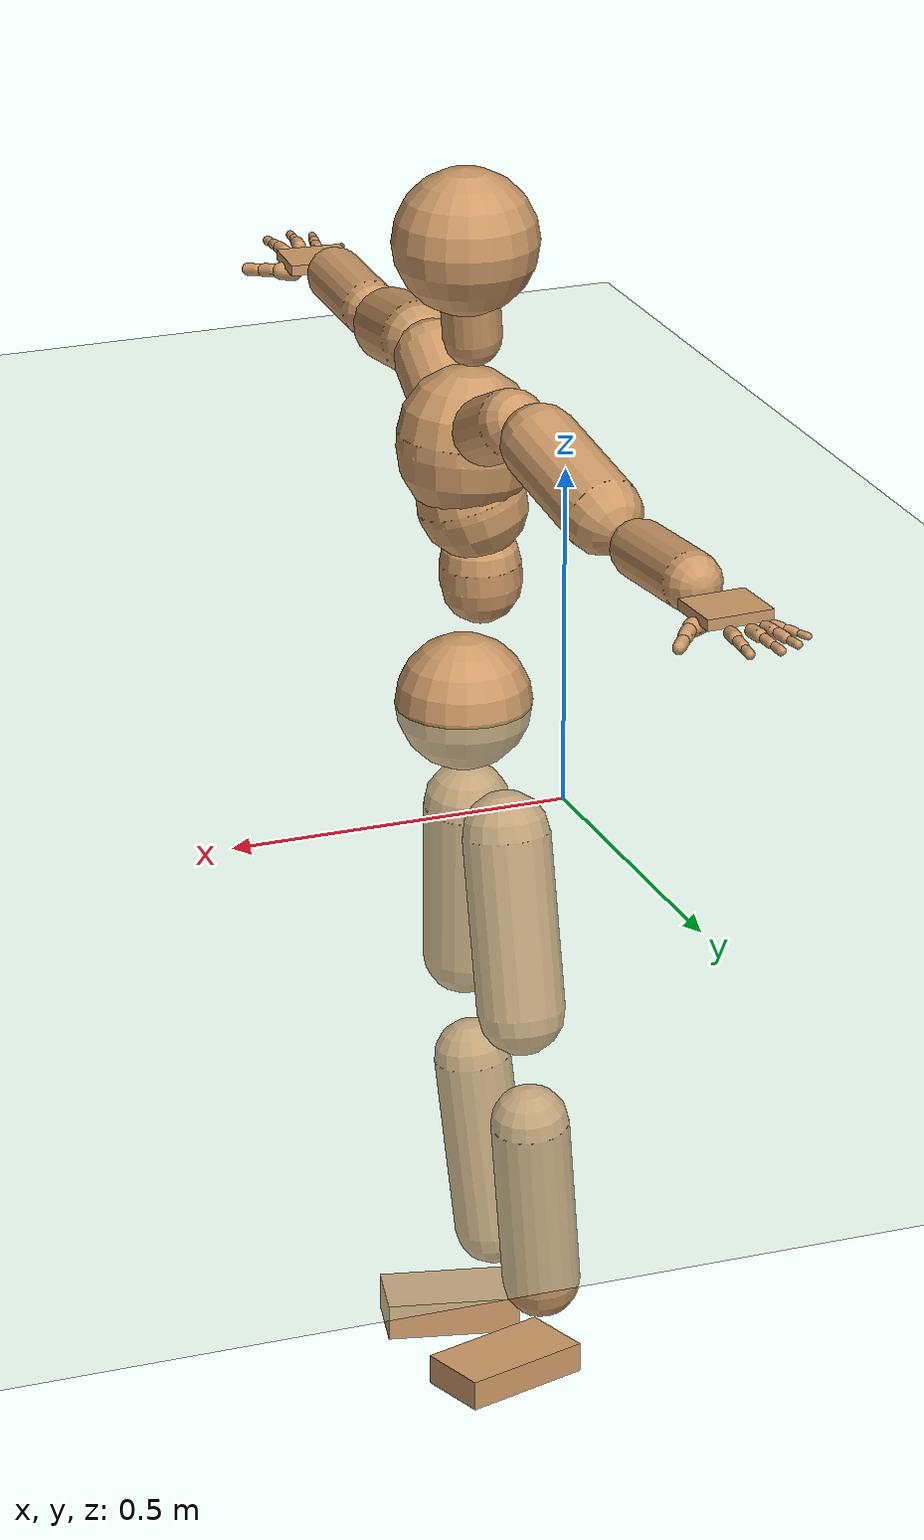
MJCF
<mujoco model="humanoid">
  <compiler coordinate="local" angle="radian"/>
  <default>
    <joint damping="0.0" armature="0.01" stiffness="0.0" limited="true"/>
    <geom conaffinity="1" condim="3" contype="7" margin="0.001" rgba="0.8 0.6 .4 1"/>
  </default>
  <asset>
    <texture type="skybox" builtin="gradient" rgb1=".4 .5 .6" rgb2="0 0 0" width="100" height="100"/>
    <texture builtin="flat" height="1278" mark="cross" markrgb="1 1 1" name="texgeom" random="0.01" rgb1="0.8 0.6 0.4" rgb2="0.8 0.6 0.4" type="cube" width="127"/>
    <texture builtin="checker" height="100" name="texplane" rgb1="0 0 0" rgb2="0.8 0.8 0.8" type="2d" width="100"/>
    <material name="MatPlane" reflectance="0.5" shininess="1" specular="1" texrepeat="60 60" texture="texplane"/>
    <material name="geom" texture="texgeom" texuniform="true"/>
  </asset>
  <worldbody>
    <light cutoff="100" diffuse="1 1 1" dir="-0 0 -1.3" directional="true" exponent="1" pos="0 0 1.3" specular=".1 .1 .1"/>
    <geom conaffinity="1" condim="3" name="floor" pos="0 0 0" rgba="0.8 0.9 0.8 1" size="100 100 .2" type="plane" material="MatPlane"/>
    <body name="Pelvis" pos="0.0007 -0.3991 0.0019">
      <freejoint name="Pelvis"/>
      <geom type="sphere" contype="1" conaffinity="1" density="500" size="0.1030" pos="0.0000 0.0000 0.0000" name="Pelvis"/>
      <body name="L_Hip" pos="-0.037 0.0588 -0.1009">
        <joint name="L_Hip_x" type="hinge" pos="0 0 0" axis="1 0 0" stiffness="800" damping="80" armature="0.02" range="-180.0000 180.0000"/>
        <joint name="L_Hip_y" type="hinge" pos="0 0 0" axis="0 1 0" stiffness="800" damping="80" armature="0.02" range="-180.0000 180.0000"/>
        <joint name="L_Hip_z" type="hinge" pos="0 0 0" axis="0 0 1" stiffness="800" damping="80" armature="0.02" range="-180.0000 180.0000"/>
        <geom type="capsule" contype="1" conaffinity="1" density="500" fromto="-0.0021 0.0156 -0.0904 -0.0082 0.0623 -0.3615" size="0.0664" name="L_Hip"/>
        <body name="L_Knee" pos="-0.0103 0.0778 -0.4519">
          <joint name="L_Knee_x" type="hinge" pos="0 0 0" axis="1 0 0" stiffness="800" damping="80" armature="0.02" range="-180.0000 180.0000"/>
          <joint name="L_Knee_y" type="hinge" pos="0 0 0" axis="0 1 0" stiffness="800" damping="80" armature="0.02" range="-180.0000 180.0000"/>
          <joint name="L_Knee_z" type="hinge" pos="0 0 0" axis="0 0 1" stiffness="800" damping="80" armature="0.02" range="-180.0000 180.0000"/>
          <geom type="capsule" contype="1" conaffinity="1" density="500" fromto="-0.0102 -0.0096 -0.0943 -0.0410 -0.0384 -0.3772" size="0.0596" name="L_Knee"/>
          <body name="L_Ankle" pos="-0.0512 -0.0479 -0.4715">
            <joint name="L_Ankle_x" type="hinge" pos="0 0 0" axis="1 0 0" stiffness="800" damping="80" armature="0.02" range="-180.0000 180.0000"/>
            <joint name="L_Ankle_y" type="hinge" pos="0 0 0" axis="0 1 0" stiffness="800" damping="80" armature="0.02" range="-180.0000 180.0000"/>
            <joint name="L_Ankle_z" type="hinge" pos="0 0 0" axis="0 0 1" stiffness="800" damping="80" armature="0.02" range="-180.0000 180.0000"/>
            <geom type="box" contype="1" conaffinity="1" density="500" pos="0.0743 0.0229 -0.0339" size="0.1025 0.0558 0.0233" quat="0.9888 0.0000 0.0000 0.1490" name="L_Ankle"/>
            <body name="L_Toe" pos="0.1486 0.0458 -0.0678">
              <joint name="L_Toe_x" type="hinge" pos="0 0 0" axis="1 0 0" stiffness="500" damping="50" armature="0.02" range="-180.0000 180.0000"/>
              <joint name="L_Toe_y" type="hinge" pos="0 0 0" axis="0 1 0" stiffness="500" damping="50" armature="0.02" range="-180.0000 180.0000"/>
              <joint name="L_Toe_z" type="hinge" pos="0 0 0" axis="0 0 1" stiffness="500" damping="50" armature="0.02" range="-180.0000 180.0000"/>
              <geom type="box" contype="1" conaffinity="1" density="500" pos="0.0000 0.0000 0.0331" size="0.0011 0.0027 0.0011" quat="0.9882 0.0000 0.0000 0.1532" name="L_Toe"/>
            </body>
          </body>
        </body>
      </body>
      <body name="R_Hip" pos="-0.0288 -0.0606 -0.1113">
        <joint name="R_Hip_x" type="hinge" pos="0 0 0" axis="1 0 0" stiffness="800" damping="80" armature="0.02" range="-180.0000 180.0000"/>
        <joint name="R_Hip_y" type="hinge" pos="0 0 0" axis="0 1 0" stiffness="800" damping="80" armature="0.02" range="-180.0000 180.0000"/>
        <joint name="R_Hip_z" type="hinge" pos="0 0 0" axis="0 0 1" stiffness="800" damping="80" armature="0.02" range="-180.0000 180.0000"/>
        <geom type="capsule" contype="1" conaffinity="1" density="500" fromto="-0.0038 -0.0118 -0.0867 -0.0152 -0.0472 -0.3469" size="0.0662" name="R_Hip"/>
        <body name="R_Knee" pos="-0.019 -0.059 -0.4336">
          <joint name="R_Knee_x" type="hinge" pos="0 0 0" axis="1 0 0" stiffness="800" damping="80" armature="0.02" range="-180.0000 180.0000"/>
          <joint name="R_Knee_y" type="hinge" pos="0 0 0" axis="0 1 0" stiffness="800" damping="80" armature="0.02" range="-180.0000 180.0000"/>
          <joint name="R_Knee_z" type="hinge" pos="0 0 0" axis="0 0 1" stiffness="800" damping="80" armature="0.02" range="-180.0000 180.0000"/>
          <geom type="capsule" contype="1" conaffinity="1" density="500" fromto="-0.0100 0.0036 -0.0974 -0.0400 0.0145 -0.3898" size="0.0594" name="R_Knee"/>
          <body name="R_Ankle" pos="-0.05 0.0181 -0.4872">
            <joint name="R_Ankle_x" type="hinge" pos="0 0 0" axis="1 0 0" stiffness="800" damping="80" armature="0.02" range="-180.0000 180.0000"/>
            <joint name="R_Ankle_y" type="hinge" pos="0 0 0" axis="0 1 0" stiffness="800" damping="80" armature="0.02" range="-180.0000 180.0000"/>
            <joint name="R_Ankle_z" type="hinge" pos="0 0 0" axis="0 0 1" stiffness="800" damping="80" armature="0.02" range="-180.0000 180.0000"/>
            <geom type="box" contype="1" conaffinity="1" density="500" pos="0.0776 -0.0181 -0.0334" size="0.1025 0.0558 0.0283" quat="0.9934 0.0000 0.0000 -0.1145" name="R_Ankle"/>
            <body name="R_Toe" pos="0.1552 -0.0362 -0.0667">
              <joint name="R_Toe_x" type="hinge" pos="0 0 0" axis="1 0 0" stiffness="500" damping="50" armature="0.02" range="-180.0000 180.0000"/>
              <joint name="R_Toe_y" type="hinge" pos="0 0 0" axis="0 1 0" stiffness="500" damping="50" armature="0.02" range="-180.0000 180.0000"/>
              <joint name="R_Toe_z" type="hinge" pos="0 0 0" axis="0 0 1" stiffness="500" damping="50" armature="0.02" range="-180.0000 180.0000"/>
              <geom type="box" contype="1" conaffinity="1" density="500" pos="0.0000 0.0000 0.0275" size="0.0011 0.0027 0.0011" quat="0.9943 0.0000 0.0000 -0.1070" name="R_Toe"/>
            </body>
          </body>
        </body>
      </body>
      <body name="Torso" pos="-0.0305 -0.0026 0.1186">
        <joint name="Torso_x" type="hinge" pos="0 0 0" axis="1 0 0" stiffness="1000" damping="100" armature="0.02" range="-180.0000 180.0000"/>
        <joint name="Torso_y" type="hinge" pos="0 0 0" axis="0 1 0" stiffness="1000" damping="100" armature="0.02" range="-180.0000 180.0000"/>
        <joint name="Torso_z" type="hinge" pos="0 0 0" axis="0 0 1" stiffness="1000" damping="100" armature="0.02" range="-180.0000 180.0000"/>
        <geom type="capsule" contype="1" conaffinity="1" density="500" fromto="0.0049 0.0045 0.0992 0.0033 0.0030 0.0661" size="0.061" name="Torso"/>
        <body name="Spine" pos="0.0082 0.0075 0.1653">
          <joint name="Spine_x" type="hinge" pos="0 0 0" axis="1 0 0" stiffness="1000" damping="100" armature="0.02" range="-180.0000 180.0000"/>
          <joint name="Spine_y" type="hinge" pos="0 0 0" axis="0 1 0" stiffness="1000" damping="100" armature="0.02" range="-180.0000 180.0000"/>
          <joint name="Spine_z" type="hinge" pos="0 0 0" axis="0 0 1" stiffness="1000" damping="100" armature="0.02" range="-180.0000 180.0000"/>
          <geom type="capsule" contype="1" conaffinity="1" density="500" fromto="0.0122 -0.0036 0.0381 0.0081 -0.0024 0.0254" size="0.0822" name="Spine"/>
          <body name="Chest" pos="0.0204 -0.006 0.0636">
            <joint name="Chest_x" type="hinge" pos="0 0 0" axis="1 0 0" stiffness="1000" damping="100" armature="0.02" range="-180.0000 180.0000"/>
            <joint name="Chest_y" type="hinge" pos="0 0 0" axis="0 1 0" stiffness="1000" damping="100" armature="0.02" range="-180.0000 180.0000"/>
            <joint name="Chest_z" type="hinge" pos="0 0 0" axis="0 0 1" stiffness="1000" damping="100" armature="0.02" range="-180.0000 180.0000"/>
            <geom type="capsule" contype="1" conaffinity="1" density="500" fromto="-0.0045 -0.0017 0.0689 -0.0030 -0.0011 0.0459" size="0.1034" name="Chest"/>
            <body name="Neck" pos="-0.0185 -0.0079 0.1789">
              <joint name="Neck_x" type="hinge" pos="0 0 0" axis="1 0 0" stiffness="500" damping="50" armature="0.02" range="-180.0000 180.0000"/>
              <joint name="Neck_y" type="hinge" pos="0 0 0" axis="0 1 0" stiffness="500" damping="50" armature="0.02" range="-180.0000 180.0000"/>
              <joint name="Neck_z" type="hinge" pos="0 0 0" axis="0 0 1" stiffness="500" damping="50" armature="0.02" range="-180.0000 180.0000"/>
              <geom type="capsule" contype="1" conaffinity="1" density="500" fromto="0.0043 0.0045 0.0379 0.0172 0.0180 0.1518" size="0.0438" name="Neck"/>
              <body name="Head" pos="0.0215 0.0225 0.1897">
                <joint name="Head_x" type="hinge" pos="0 0 0" axis="1 0 0" stiffness="500" damping="50" armature="0.02" range="-180.0000 180.0000"/>
                <joint name="Head_y" type="hinge" pos="0 0 0" axis="0 1 0" stiffness="500" damping="50" armature="0.02" range="-180.0000 180.0000"/>
                <joint name="Head_z" type="hinge" pos="0 0 0" axis="0 0 1" stiffness="500" damping="50" armature="0.02" range="-180.0000 180.0000"/>
                <geom type="sphere" contype="1" conaffinity="1" density="500" size="0.1083" pos="0.0000 0.0000 0.0000" name="Head"/>
              </body>
            </body>
            <body name="L_Thorax" pos="0.0001 0.043 0.0829">
              <joint name="L_Thorax_x" type="hinge" pos="0 0 0" axis="1 0 0" stiffness="500" damping="50" armature="0.02" range="-180.0000 180.0000"/>
              <joint name="L_Thorax_y" type="hinge" pos="0 0 0" axis="0 1 0" stiffness="500" damping="50" armature="0.02" range="-180.0000 180.0000"/>
              <joint name="L_Thorax_z" type="hinge" pos="0 0 0" axis="0 0 1" stiffness="500" damping="50" armature="0.02" range="-180.0000 180.0000"/>
              <geom type="capsule" contype="1" conaffinity="1" density="500" fromto="-0.0027 0.0290 0.0136 -0.0108 0.1161 0.0545" size="0.0514" name="L_Thorax"/>
              <body name="L_Shoulder" pos="-0.0135 0.1452 0.0682">
                <joint name="L_Shoulder_x" type="hinge" pos="0 0 0" axis="1 0 0" stiffness="500" damping="50" armature="0.02" range="-180.0000 180.0000"/>
                <joint name="L_Shoulder_y" type="hinge" pos="0 0 0" axis="0 1 0" stiffness="500" damping="50" armature="0.02" range="-180.0000 180.0000"/>
                <joint name="L_Shoulder_z" type="hinge" pos="0 0 0" axis="0 0 1" stiffness="500" damping="50" armature="0.02" range="-180.0000 180.0000"/>
                <geom type="capsule" contype="1" conaffinity="1" density="500" fromto="-0.0091 0.0559 -0.0178 -0.0366 0.2235 -0.0711" size="0.0585" name="L_Shoulder"/>
                <body name="L_Elbow" pos="-0.0457 0.2794 -0.0889">
                  <joint name="L_Elbow_x" type="hinge" pos="0 0 0" axis="1 0 0" stiffness="500" damping="50" armature="0.02" range="-720.0000 720.0000"/>
                  <joint name="L_Elbow_y" type="hinge" pos="0 0 0" axis="0 1 0" stiffness="500" damping="50" armature="0.02" range="-720.0000 720.0000"/>
                  <joint name="L_Elbow_z" type="hinge" pos="0 0 0" axis="0 0 1" stiffness="500" damping="50" armature="0.02" range="-720.0000 720.0000"/>
                  <geom type="capsule" contype="1" conaffinity="1" density="500" fromto="-0.0001 0.0602 0.0053 -0.0005 0.2410 0.0213" size="0.0433" name="L_Elbow"/>
                  <body name="L_Wrist" pos="-0.0007 0.3012 0.0266">
                    <joint name="L_Wrist_x" type="hinge" pos="0 0 0" axis="1 0 0" stiffness="300" damping="30" armature="0.02" range="-180.0000 180.0000"/>
                    <joint name="L_Wrist_y" type="hinge" pos="0 0 0" axis="0 1 0" stiffness="300" damping="30" armature="0.02" range="-180.0000 180.0000"/>
                    <joint name="L_Wrist_z" type="hinge" pos="0 0 0" axis="0 0 1" stiffness="300" damping="30" armature="0.02" range="-180.0000 180.0000"/>
                    <geom type="box" contype="1" conaffinity="1" density="500" pos="-0.0032 0.0504 -0.0067" size="0.0444 0.05 0.0082" quat="0.7293 0.0000 0.0000 -0.6842" name="L_Wrist"/>
                    <body name="L_Index1" pos="0.0214 0.118 -0.0106">
                      <joint name="L_Index1_x" type="hinge" pos="0 0 0" axis="1 0 0" stiffness="100" damping="10" armature="0.02" range="-180.0000 180.0000"/>
                      <joint name="L_Index1_y" type="hinge" pos="0 0 0" axis="0 1 0" stiffness="100" damping="10" armature="0.02" range="-180.0000 180.0000"/>
                      <joint name="L_Index1_z" type="hinge" pos="0 0 0" axis="0 0 1" stiffness="100" damping="10" armature="0.02" range="-180.0000 180.0000"/>
                      <geom type="capsule" contype="1" conaffinity="1" density="500" fromto="0.0008 0.0071 0.0003 0.0030 0.0285 0.0013" size="0.0098" name="L_Index1"/>
                      <body name="L_Index2" pos="0.0038 0.0356 0.0016">
                        <joint name="L_Index2_x" type="hinge" pos="0 0 0" axis="1 0 0" stiffness="100" damping="10" armature="0.02" range="-180.0000 180.0000"/>
                        <joint name="L_Index2_y" type="hinge" pos="0 0 0" axis="0 1 0" stiffness="100" damping="10" armature="0.02" range="-180.0000 180.0000"/>
                        <joint name="L_Index2_z" type="hinge" pos="0 0 0" axis="0 0 1" stiffness="100" damping="10" armature="0.02" range="-180.0000 180.0000"/>
                        <geom type="capsule" contype="1" conaffinity="1" density="500" fromto="-0.0000 0.0050 -0.0006 -0.0000 0.0201 -0.0024" size="0.0081" name="L_Index2"/>
                        <body name="L_Index3" pos="0 0.0251 -0.003">
                          <joint name="L_Index3_x" type="hinge" pos="0 0 0" axis="1 0 0" stiffness="100" damping="10" armature="0.02" range="-180.0000 180.0000"/>
                          <joint name="L_Index3_y" type="hinge" pos="0 0 0" axis="0 1 0" stiffness="100" damping="10" armature="0.02" range="-180.0000 180.0000"/>
                          <joint name="L_Index3_z" type="hinge" pos="0 0 0" axis="0 0 1" stiffness="100" damping="10" armature="0.02" range="-180.0000 180.0000"/>
                          <geom type="capsule" contype="1" conaffinity="1" density="500" fromto="0.0004 0.0054 -0.0002 0.0016 0.0217 -0.0008" size="0.007" name="L_Index3"/>
                        </body>
                      </body>
                    </body>
                    <body name="L_Middle1" pos="-0.004 0.1266 -0.0076">
                      <joint name="L_Middle1_x" type="hinge" pos="0 0 0" axis="1 0 0" stiffness="100" damping="10" armature="0.02" range="-180.0000 180.0000"/>
                      <joint name="L_Middle1_y" type="hinge" pos="0 0 0" axis="0 1 0" stiffness="100" damping="10" armature="0.02" range="-180.0000 180.0000"/>
                      <joint name="L_Middle1_z" type="hinge" pos="0 0 0" axis="0 0 1" stiffness="100" damping="10" armature="0.02" range="-180.0000 180.0000"/>
                      <geom type="capsule" contype="1" conaffinity="1" density="500" fromto="-0.0009 0.0068 0.0001 -0.0036 0.0271 0.0003" size="0.0099" name="L_Middle1"/>
                      <body name="L_Middle2" pos="-0.0045 0.0338 0.0003">
                        <joint name="L_Middle2_x" type="hinge" pos="0 0 0" axis="1 0 0" stiffness="100" damping="10" armature="0.02" range="-180.0000 180.0000"/>
                        <joint name="L_Middle2_y" type="hinge" pos="0 0 0" axis="0 1 0" stiffness="100" damping="10" armature="0.02" range="-180.0000 180.0000"/>
                        <joint name="L_Middle2_z" type="hinge" pos="0 0 0" axis="0 0 1" stiffness="100" damping="10" armature="0.02" range="-180.0000 180.0000"/>
                        <geom type="capsule" contype="1" conaffinity="1" density="500" fromto="-0.0009 0.0052 -0.0005 -0.0035 0.0208 -0.0021" size="0.0074" name="L_Middle2"/>
                        <body name="L_Middle3" pos="-0.0044 0.026 -0.0027">
                          <joint name="L_Middle3_x" type="hinge" pos="0 0 0" axis="1 0 0" stiffness="100" damping="10" armature="0.02" range="-180.0000 180.0000"/>
                          <joint name="L_Middle3_y" type="hinge" pos="0 0 0" axis="0 1 0" stiffness="100" damping="10" armature="0.02" range="-180.0000 180.0000"/>
                          <joint name="L_Middle3_z" type="hinge" pos="0 0 0" axis="0 0 1" stiffness="100" damping="10" armature="0.02" range="-180.0000 180.0000"/>
                          <geom type="capsule" contype="1" conaffinity="1" density="500" fromto="-0.0005 0.0056 -0.0001 -0.0019 0.0224 -0.0005" size="0.0067" name="L_Middle3"/>
                        </body>
                      </body>
                    </body>
                    <body name="L_Pinky1" pos="-0.0483 0.0984 -0.0161">
                      <joint name="L_Pinky1_x" type="hinge" pos="0 0 0" axis="1 0 0" stiffness="100" damping="10" armature="0.02" range="-180.0000 180.0000"/>
                      <joint name="L_Pinky1_y" type="hinge" pos="0 0 0" axis="0 1 0" stiffness="100" damping="10" armature="0.02" range="-180.0000 180.0000"/>
                      <joint name="L_Pinky1_z" type="hinge" pos="0 0 0" axis="0 0 1" stiffness="100" damping="10" armature="0.02" range="-180.0000 180.0000"/>
                      <geom type="capsule" contype="1" conaffinity="1" density="500" fromto="-0.0024 0.0036 -0.0004 -0.0098 0.0142 -0.0016" size="0.0071" name="L_Pinky1"/>
                      <body name="L_Pinky2" pos="-0.0122 0.0178 -0.002">
                        <joint name="L_Pinky2_x" type="hinge" pos="0 0 0" axis="1 0 0" stiffness="100" damping="10" armature="0.02" range="-180.0000 180.0000"/>
                        <joint name="L_Pinky2_y" type="hinge" pos="0 0 0" axis="0 1 0" stiffness="100" damping="10" armature="0.02" range="-180.0000 180.0000"/>
                        <joint name="L_Pinky2_z" type="hinge" pos="0 0 0" axis="0 0 1" stiffness="100" damping="10" armature="0.02" range="-180.0000 180.0000"/>
                        <geom type="capsule" contype="1" conaffinity="1" density="500" fromto="-0.0023 0.0035 -0.0004 -0.0093 0.0140 -0.0017" size="0.0067" name="L_Pinky2"/>
                        <body name="L_Pinky3" pos="-0.0117 0.0175 -0.0021">
                          <joint name="L_Pinky3_x" type="hinge" pos="0 0 0" axis="1 0 0" stiffness="100" damping="10" armature="0.02" range="-180.0000 180.0000"/>
                          <joint name="L_Pinky3_y" type="hinge" pos="0 0 0" axis="0 1 0" stiffness="100" damping="10" armature="0.02" range="-180.0000 180.0000"/>
                          <joint name="L_Pinky3_z" type="hinge" pos="0 0 0" axis="0 0 1" stiffness="100" damping="10" armature="0.02" range="-180.0000 180.0000"/>
                          <geom type="capsule" contype="1" conaffinity="1" density="500" fromto="-0.0019 0.0039 -0.0000 -0.0077 0.0156 -0.0001" size="0.0052" name="L_Pinky3"/>
                        </body>
                      </body>
                    </body>
                    <body name="L_Ring1" pos="-0.0297 0.1133 -0.0103">
                      <joint name="L_Ring1_x" type="hinge" pos="0 0 0" axis="1 0 0" stiffness="100" damping="10" armature="0.02" range="-180.0000 180.0000"/>
                      <joint name="L_Ring1_y" type="hinge" pos="0 0 0" axis="0 1 0" stiffness="100" damping="10" armature="0.02" range="-180.0000 180.0000"/>
                      <joint name="L_Ring1_z" type="hinge" pos="0 0 0" axis="0 0 1" stiffness="100" damping="10" armature="0.02" range="-180.0000 180.0000"/>
                      <geom type="capsule" contype="1" conaffinity="1" density="500" fromto="-0.0010 0.0063 0.0002 -0.0041 0.0252 0.0007" size="0.0085" name="L_Ring1"/>
                      <body name="L_Ring2" pos="-0.0051 0.0315 0.0009">
                        <joint name="L_Ring2_x" type="hinge" pos="0 0 0" axis="1 0 0" stiffness="100" damping="10" armature="0.02" range="-180.0000 180.0000"/>
                        <joint name="L_Ring2_y" type="hinge" pos="0 0 0" axis="0 1 0" stiffness="100" damping="10" armature="0.02" range="-180.0000 180.0000"/>
                        <joint name="L_Ring2_z" type="hinge" pos="0 0 0" axis="0 0 1" stiffness="100" damping="10" armature="0.02" range="-180.0000 180.0000"/>
                        <geom type="capsule" contype="1" conaffinity="1" density="500" fromto="-0.0014 0.0051 -0.0004 -0.0057 0.0204 -0.0018" size="0.0079" name="L_Ring2"/>
                        <body name="L_Ring3" pos="-0.0071 0.0255 -0.0022">
                          <joint name="L_Ring3_x" type="hinge" pos="0 0 0" axis="1 0 0" stiffness="100" damping="10" armature="0.02" range="-180.0000 180.0000"/>
                          <joint name="L_Ring3_y" type="hinge" pos="0 0 0" axis="0 1 0" stiffness="100" damping="10" armature="0.02" range="-180.0000 180.0000"/>
                          <joint name="L_Ring3_z" type="hinge" pos="0 0 0" axis="0 0 1" stiffness="100" damping="10" armature="0.02" range="-180.0000 180.0000"/>
                          <geom type="capsule" contype="1" conaffinity="1" density="500" fromto="-0.0010 0.0055 -0.0000 -0.0041 0.0220 -0.0002" size="0.0062" name="L_Ring3"/>
                        </body>
                      </body>
                    </body>
                    <body name="L_Thumb1" pos="0.0284 0.048 -0.022">
                      <joint name="L_Thumb1_x" type="hinge" pos="0 0 0" axis="1 0 0" stiffness="100" damping="10" armature="0.02" range="-180.0000 180.0000"/>
                      <joint name="L_Thumb1_y" type="hinge" pos="0 0 0" axis="0 1 0" stiffness="100" damping="10" armature="0.02" range="-180.0000 180.0000"/>
                      <joint name="L_Thumb1_z" type="hinge" pos="0 0 0" axis="0 0 1" stiffness="100" damping="10" armature="0.02" range="-180.0000 180.0000"/>
                      <geom type="capsule" contype="1" conaffinity="1" density="500" fromto="0.0057 0.0039 0.0004 0.0229 0.0155 0.0015" size="0.0137" name="L_Thumb1"/>
                      <body name="L_Thumb2" pos="0.0286 0.0194 0.0019">
                        <joint name="L_Thumb2_x" type="hinge" pos="0 0 0" axis="1 0 0" stiffness="100" damping="10" armature="0.02" range="-180.0000 180.0000"/>
                        <joint name="L_Thumb2_y" type="hinge" pos="0 0 0" axis="0 1 0" stiffness="100" damping="10" armature="0.02" range="-180.0000 180.0000"/>
                        <joint name="L_Thumb2_z" type="hinge" pos="0 0 0" axis="0 0 1" stiffness="100" damping="10" armature="0.02" range="-180.0000 180.0000"/>
                        <geom type="capsule" contype="1" conaffinity="1" density="500" fromto="0.0035 0.0047 -0.0009 0.0142 0.0189 -0.0036" size="0.0107" name="L_Thumb2"/>
                        <body name="L_Thumb3" pos="0.0177 0.0236 -0.0045">
                          <joint name="L_Thumb3_x" type="hinge" pos="0 0 0" axis="1 0 0" stiffness="100" damping="10" armature="0.02" range="-180.0000 180.0000"/>
                          <joint name="L_Thumb3_y" type="hinge" pos="0 0 0" axis="0 1 0" stiffness="100" damping="10" armature="0.02" range="-180.0000 180.0000"/>
                          <joint name="L_Thumb3_z" type="hinge" pos="0 0 0" axis="0 0 1" stiffness="100" damping="10" armature="0.02" range="-180.0000 180.0000"/>
                          <geom type="capsule" contype="1" conaffinity="1" density="500" fromto="0.0039 0.0051 -0.0005 0.0158 0.0205 -0.0020" size="0.0095" name="L_Thumb3"/>
                        </body>
                      </body>
                    </body>
                  </body>
                </body>
              </body>
            </body>
            <body name="R_Thorax" pos="-0.004 -0.0435 0.0827">
              <joint name="R_Thorax_x" type="hinge" pos="0 0 0" axis="1 0 0" stiffness="500" damping="50" armature="0.02" range="-180.0000 180.0000"/>
              <joint name="R_Thorax_y" type="hinge" pos="0 0 0" axis="0 1 0" stiffness="500" damping="50" armature="0.02" range="-180.0000 180.0000"/>
              <joint name="R_Thorax_z" type="hinge" pos="0 0 0" axis="0 0 1" stiffness="500" damping="50" armature="0.02" range="-180.0000 180.0000"/>
              <geom type="capsule" contype="1" conaffinity="1" density="500" fromto="-0.0016 -0.0271 0.0136 -0.0064 -0.1083 0.0544" size="0.0598" name="R_Thorax"/>
              <body name="R_Shoulder" pos="-0.008 -0.1354 0.068">
                <joint name="R_Shoulder_x" type="hinge" pos="0 0 0" axis="1 0 0" stiffness="500" damping="50" armature="0.02" range="-180.0000 180.0000"/>
                <joint name="R_Shoulder_y" type="hinge" pos="0 0 0" axis="0 1 0" stiffness="500" damping="50" armature="0.02" range="-180.0000 180.0000"/>
                <joint name="R_Shoulder_z" type="hinge" pos="0 0 0" axis="0 0 1" stiffness="500" damping="50" armature="0.02" range="-180.0000 180.0000"/>
                <geom type="capsule" contype="1" conaffinity="1" density="500" fromto="-0.0070 -0.0596 -0.0117 -0.0281 -0.2383 -0.0469" size="0.0577" name="R_Shoulder"/>
                <body name="R_Elbow" pos="-0.0352 -0.2979 -0.0586">
                  <joint name="R_Elbow_x" type="hinge" pos="0 0 0" axis="1 0 0" stiffness="500" damping="50" armature="0.02" range="-720.0000 720.0000"/>
                  <joint name="R_Elbow_y" type="hinge" pos="0 0 0" axis="0 1 0" stiffness="500" damping="50" armature="0.02" range="-720.0000 720.0000"/>
                  <joint name="R_Elbow_z" type="hinge" pos="0 0 0" axis="0 0 1" stiffness="500" damping="50" armature="0.02" range="-720.0000 720.0000"/>
                  <geom type="capsule" contype="1" conaffinity="1" density="500" fromto="-0.0024 -0.0583 0.0001 -0.0095 -0.2333 0.0002" size="0.0445" name="R_Elbow"/>
                  <body name="R_Wrist" pos="-0.0119 -0.2916 0.0003">
                    <joint name="R_Wrist_x" type="hinge" pos="0 0 0" axis="1 0 0" stiffness="300" damping="30" armature="0.02" range="-180.0000 180.0000"/>
                    <joint name="R_Wrist_y" type="hinge" pos="0 0 0" axis="0 1 0" stiffness="300" damping="30" armature="0.02" range="-180.0000 180.0000"/>
                    <joint name="R_Wrist_z" type="hinge" pos="0 0 0" axis="0 0 1" stiffness="300" damping="30" armature="0.02" range="-180.0000 180.0000"/>
                    <geom type="box" contype="1" conaffinity="1" density="500" pos="-0.0036 -0.0501 -0.0085" size="0.0444 0.0516 0.0083" quat="0.7318 0.0000 0.0000 0.6815" name="R_Wrist"/>
                    <body name="R_Index1" pos="0.0207 -0.1174 -0.0142">
                      <joint name="R_Index1_x" type="hinge" pos="0 0 0" axis="1 0 0" stiffness="100" damping="10" armature="0.02" range="-180.0000 180.0000"/>
                      <joint name="R_Index1_y" type="hinge" pos="0 0 0" axis="0 1 0" stiffness="100" damping="10" armature="0.02" range="-180.0000 180.0000"/>
                      <joint name="R_Index1_z" type="hinge" pos="0 0 0" axis="0 0 1" stiffness="100" damping="10" armature="0.02" range="-180.0000 180.0000"/>
                      <geom type="capsule" contype="1" conaffinity="1" density="500" fromto="0.0008 -0.0071 0.0003 0.0030 -0.0285 0.0013" size="0.0098" name="R_Index1"/>
                      <body name="R_Index2" pos="0.0038 -0.0356 0.0016">
                        <joint name="R_Index2_x" type="hinge" pos="0 0 0" axis="1 0 0" stiffness="100" damping="10" armature="0.02" range="-180.0000 180.0000"/>
                        <joint name="R_Index2_y" type="hinge" pos="0 0 0" axis="0 1 0" stiffness="100" damping="10" armature="0.02" range="-180.0000 180.0000"/>
                        <joint name="R_Index2_z" type="hinge" pos="0 0 0" axis="0 0 1" stiffness="100" damping="10" armature="0.02" range="-180.0000 180.0000"/>
                        <geom type="capsule" contype="1" conaffinity="1" density="500" fromto="-0.0000 -0.0050 -0.0006 -0.0000 -0.0201 -0.0024" size="0.0081" name="R_Index2"/>
                        <body name="R_Index3" pos="0 -0.0251 -0.003">
                          <joint name="R_Index3_x" type="hinge" pos="0 0 0" axis="1 0 0" stiffness="100" damping="10" armature="0.02" range="-180.0000 180.0000"/>
                          <joint name="R_Index3_y" type="hinge" pos="0 0 0" axis="0 1 0" stiffness="100" damping="10" armature="0.02" range="-180.0000 180.0000"/>
                          <joint name="R_Index3_z" type="hinge" pos="0 0 0" axis="0 0 1" stiffness="100" damping="10" armature="0.02" range="-180.0000 180.0000"/>
                          <geom type="capsule" contype="1" conaffinity="1" density="500" fromto="0.0004 -0.0046 -0.0002 0.0016 -0.0185 -0.0008" size="0.0073" name="R_Index3"/>
                        </body>
                      </body>
                    </body>
                    <body name="R_Middle1" pos="-0.0047 -0.126 -0.0112">
                      <joint name="R_Middle1_x" type="hinge" pos="0 0 0" axis="1 0 0" stiffness="100" damping="10" armature="0.02" range="-180.0000 180.0000"/>
                      <joint name="R_Middle1_y" type="hinge" pos="0 0 0" axis="0 1 0" stiffness="100" damping="10" armature="0.02" range="-180.0000 180.0000"/>
                      <joint name="R_Middle1_z" type="hinge" pos="0 0 0" axis="0 0 1" stiffness="100" damping="10" armature="0.02" range="-180.0000 180.0000"/>
                      <geom type="capsule" contype="1" conaffinity="1" density="500" fromto="-0.0009 -0.0068 0.0001 -0.0036 -0.0271 0.0003" size="0.0099" name="R_Middle1"/>
                      <body name="R_Middle2" pos="-0.0045 -0.0338 0.0003">
                        <joint name="R_Middle2_x" type="hinge" pos="0 0 0" axis="1 0 0" stiffness="100" damping="10" armature="0.02" range="-180.0000 180.0000"/>
                        <joint name="R_Middle2_y" type="hinge" pos="0 0 0" axis="0 1 0" stiffness="100" damping="10" armature="0.02" range="-180.0000 180.0000"/>
                        <joint name="R_Middle2_z" type="hinge" pos="0 0 0" axis="0 0 1" stiffness="100" damping="10" armature="0.02" range="-180.0000 180.0000"/>
                        <geom type="capsule" contype="1" conaffinity="1" density="500" fromto="-0.0009 -0.0052 -0.0005 -0.0035 -0.0208 -0.0021" size="0.0074" name="R_Middle2"/>
                        <body name="R_Middle3" pos="-0.0044 -0.026 -0.0026">
                          <joint name="R_Middle3_x" type="hinge" pos="0 0 0" axis="1 0 0" stiffness="100" damping="10" armature="0.02" range="-180.0000 180.0000"/>
                          <joint name="R_Middle3_y" type="hinge" pos="0 0 0" axis="0 1 0" stiffness="100" damping="10" armature="0.02" range="-180.0000 180.0000"/>
                          <joint name="R_Middle3_z" type="hinge" pos="0 0 0" axis="0 0 1" stiffness="100" damping="10" armature="0.02" range="-180.0000 180.0000"/>
                          <geom type="capsule" contype="1" conaffinity="1" density="500" fromto="-0.0005 -0.0048 -0.0001 -0.0019 -0.0192 -0.0005" size="0.0069" name="R_Middle3"/>
                        </body>
                      </body>
                    </body>
                    <body name="R_Pinky1" pos="-0.049 -0.0978 -0.0197">
                      <joint name="R_Pinky1_x" type="hinge" pos="0 0 0" axis="1 0 0" stiffness="100" damping="10" armature="0.02" range="-180.0000 180.0000"/>
                      <joint name="R_Pinky1_y" type="hinge" pos="0 0 0" axis="0 1 0" stiffness="100" damping="10" armature="0.02" range="-180.0000 180.0000"/>
                      <joint name="R_Pinky1_z" type="hinge" pos="0 0 0" axis="0 0 1" stiffness="100" damping="10" armature="0.02" range="-180.0000 180.0000"/>
                      <geom type="capsule" contype="1" conaffinity="1" density="500" fromto="-0.0024 -0.0036 -0.0004 -0.0098 -0.0142 -0.0016" size="0.0071" name="R_Pinky1"/>
                      <body name="R_Pinky2" pos="-0.0122 -0.0178 -0.002">
                        <joint name="R_Pinky2_x" type="hinge" pos="0 0 0" axis="1 0 0" stiffness="100" damping="10" armature="0.02" range="-180.0000 180.0000"/>
                        <joint name="R_Pinky2_y" type="hinge" pos="0 0 0" axis="0 1 0" stiffness="100" damping="10" armature="0.02" range="-180.0000 180.0000"/>
                        <joint name="R_Pinky2_z" type="hinge" pos="0 0 0" axis="0 0 1" stiffness="100" damping="10" armature="0.02" range="-180.0000 180.0000"/>
                        <geom type="capsule" contype="1" conaffinity="1" density="500" fromto="-0.0023 -0.0035 -0.0004 -0.0093 -0.0140 -0.0017" size="0.0067" name="R_Pinky2"/>
                        <body name="R_Pinky3" pos="-0.0117 -0.0175 -0.0021">
                          <joint name="R_Pinky3_x" type="hinge" pos="0 0 0" axis="1 0 0" stiffness="100" damping="10" armature="0.02" range="-180.0000 180.0000"/>
                          <joint name="R_Pinky3_y" type="hinge" pos="0 0 0" axis="0 1 0" stiffness="100" damping="10" armature="0.02" range="-180.0000 180.0000"/>
                          <joint name="R_Pinky3_z" type="hinge" pos="0 0 0" axis="0 0 1" stiffness="100" damping="10" armature="0.02" range="-180.0000 180.0000"/>
                          <geom type="capsule" contype="1" conaffinity="1" density="500" fromto="-0.0019 -0.0031 -0.0000 -0.0077 -0.0124 -0.0001" size="0.0055" name="R_Pinky3"/>
                        </body>
                      </body>
                    </body>
                    <body name="R_Ring1" pos="-0.0304 -0.1128 -0.0139">
                      <joint name="R_Ring1_x" type="hinge" pos="0 0 0" axis="1 0 0" stiffness="100" damping="10" armature="0.02" range="-180.0000 180.0000"/>
                      <joint name="R_Ring1_y" type="hinge" pos="0 0 0" axis="0 1 0" stiffness="100" damping="10" armature="0.02" range="-180.0000 180.0000"/>
                      <joint name="R_Ring1_z" type="hinge" pos="0 0 0" axis="0 0 1" stiffness="100" damping="10" armature="0.02" range="-180.0000 180.0000"/>
                      <geom type="capsule" contype="1" conaffinity="1" density="500" fromto="-0.0010 -0.0063 0.0002 -0.0041 -0.0252 0.0007" size="0.0085" name="R_Ring1"/>
                      <body name="R_Ring2" pos="-0.0051 -0.0315 0.0009">
                        <joint name="R_Ring2_x" type="hinge" pos="0 0 0" axis="1 0 0" stiffness="100" damping="10" armature="0.02" range="-180.0000 180.0000"/>
                        <joint name="R_Ring2_y" type="hinge" pos="0 0 0" axis="0 1 0" stiffness="100" damping="10" armature="0.02" range="-180.0000 180.0000"/>
                        <joint name="R_Ring2_z" type="hinge" pos="0 0 0" axis="0 0 1" stiffness="100" damping="10" armature="0.02" range="-180.0000 180.0000"/>
                        <geom type="capsule" contype="1" conaffinity="1" density="500" fromto="-0.0014 -0.0051 -0.0004 -0.0057 -0.0204 -0.0018" size="0.0079" name="R_Ring2"/>
                        <body name="R_Ring3" pos="-0.0071 -0.0255 -0.0022">
                          <joint name="R_Ring3_x" type="hinge" pos="0 0 0" axis="1 0 0" stiffness="100" damping="10" armature="0.02" range="-180.0000 180.0000"/>
                          <joint name="R_Ring3_y" type="hinge" pos="0 0 0" axis="0 1 0" stiffness="100" damping="10" armature="0.02" range="-180.0000 180.0000"/>
                          <joint name="R_Ring3_z" type="hinge" pos="0 0 0" axis="0 0 1" stiffness="100" damping="10" armature="0.02" range="-180.0000 180.0000"/>
                          <geom type="capsule" contype="1" conaffinity="1" density="500" fromto="-0.0010 -0.0047 -0.0000 -0.0041 -0.0188 -0.0002" size="0.0065" name="R_Ring3"/>
                        </body>
                      </body>
                    </body>
                    <body name="R_Thumb1" pos="0.0277 -0.0475 -0.0256">
                      <joint name="R_Thumb1_x" type="hinge" pos="0 0 0" axis="1 0 0" stiffness="100" damping="10" armature="0.02" range="-180.0000 180.0000"/>
                      <joint name="R_Thumb1_y" type="hinge" pos="0 0 0" axis="0 1 0" stiffness="100" damping="10" armature="0.02" range="-180.0000 180.0000"/>
                      <joint name="R_Thumb1_z" type="hinge" pos="0 0 0" axis="0 0 1" stiffness="100" damping="10" armature="0.02" range="-180.0000 180.0000"/>
                      <geom type="capsule" contype="1" conaffinity="1" density="500" fromto="0.0057 -0.0039 0.0004 0.0229 -0.0155 0.0015" size="0.0137" name="R_Thumb1"/>
                      <body name="R_Thumb2" pos="0.0286 -0.0194 0.0019">
                        <joint name="R_Thumb2_x" type="hinge" pos="0 0 0" axis="1 0 0" stiffness="100" damping="10" armature="0.02" range="-180.0000 180.0000"/>
                        <joint name="R_Thumb2_y" type="hinge" pos="0 0 0" axis="0 1 0" stiffness="100" damping="10" armature="0.02" range="-180.0000 180.0000"/>
                        <joint name="R_Thumb2_z" type="hinge" pos="0 0 0" axis="0 0 1" stiffness="100" damping="10" armature="0.02" range="-180.0000 180.0000"/>
                        <geom type="capsule" contype="1" conaffinity="1" density="500" fromto="0.0035 -0.0047 -0.0009 0.0142 -0.0189 -0.0036" size="0.0107" name="R_Thumb2"/>
                        <body name="R_Thumb3" pos="0.0177 -0.0236 -0.0045">
                          <joint name="R_Thumb3_x" type="hinge" pos="0 0 0" axis="1 0 0" stiffness="100" damping="10" armature="0.02" range="-180.0000 180.0000"/>
                          <joint name="R_Thumb3_y" type="hinge" pos="0 0 0" axis="0 1 0" stiffness="100" damping="10" armature="0.02" range="-180.0000 180.0000"/>
                          <joint name="R_Thumb3_z" type="hinge" pos="0 0 0" axis="0 0 1" stiffness="100" damping="10" armature="0.02" range="-180.0000 180.0000"/>
                          <geom type="capsule" contype="1" conaffinity="1" density="500" fromto="0.0039 -0.0043 -0.0005 0.0158 -0.0173 -0.0020" size="0.0098" name="R_Thumb3"/>
                        </body>
                      </body>
                    </body>
                  </body>
                </body>
              </body>
            </body>
          </body>
        </body>
      </body>
    </body>
  </worldbody>
  <actuator>
    <motor name="L_Hip_x" joint="L_Hip_x" gear="500"/>
    <motor name="L_Hip_y" joint="L_Hip_y" gear="500"/>
    <motor name="L_Hip_z" joint="L_Hip_z" gear="500"/>
    <motor name="L_Knee_x" joint="L_Knee_x" gear="500"/>
    <motor name="L_Knee_y" joint="L_Knee_y" gear="500"/>
    <motor name="L_Knee_z" joint="L_Knee_z" gear="500"/>
    <motor name="L_Ankle_x" joint="L_Ankle_x" gear="500"/>
    <motor name="L_Ankle_y" joint="L_Ankle_y" gear="500"/>
    <motor name="L_Ankle_z" joint="L_Ankle_z" gear="500"/>
    <motor name="L_Toe_x" joint="L_Toe_x" gear="500"/>
    <motor name="L_Toe_y" joint="L_Toe_y" gear="500"/>
    <motor name="L_Toe_z" joint="L_Toe_z" gear="500"/>
    <motor name="R_Hip_x" joint="R_Hip_x" gear="500"/>
    <motor name="R_Hip_y" joint="R_Hip_y" gear="500"/>
    <motor name="R_Hip_z" joint="R_Hip_z" gear="500"/>
    <motor name="R_Knee_x" joint="R_Knee_x" gear="500"/>
    <motor name="R_Knee_y" joint="R_Knee_y" gear="500"/>
    <motor name="R_Knee_z" joint="R_Knee_z" gear="500"/>
    <motor name="R_Ankle_x" joint="R_Ankle_x" gear="500"/>
    <motor name="R_Ankle_y" joint="R_Ankle_y" gear="500"/>
    <motor name="R_Ankle_z" joint="R_Ankle_z" gear="500"/>
    <motor name="R_Toe_x" joint="R_Toe_x" gear="500"/>
    <motor name="R_Toe_y" joint="R_Toe_y" gear="500"/>
    <motor name="R_Toe_z" joint="R_Toe_z" gear="500"/>
    <motor name="Torso_x" joint="Torso_x" gear="500"/>
    <motor name="Torso_y" joint="Torso_y" gear="500"/>
    <motor name="Torso_z" joint="Torso_z" gear="500"/>
    <motor name="Spine_x" joint="Spine_x" gear="500"/>
    <motor name="Spine_y" joint="Spine_y" gear="500"/>
    <motor name="Spine_z" joint="Spine_z" gear="500"/>
    <motor name="Chest_x" joint="Chest_x" gear="500"/>
    <motor name="Chest_y" joint="Chest_y" gear="500"/>
    <motor name="Chest_z" joint="Chest_z" gear="500"/>
    <motor name="Neck_x" joint="Neck_x" gear="500"/>
    <motor name="Neck_y" joint="Neck_y" gear="500"/>
    <motor name="Neck_z" joint="Neck_z" gear="500"/>
    <motor name="Head_x" joint="Head_x" gear="500"/>
    <motor name="Head_y" joint="Head_y" gear="500"/>
    <motor name="Head_z" joint="Head_z" gear="500"/>
    <motor name="L_Thorax_x" joint="L_Thorax_x" gear="500"/>
    <motor name="L_Thorax_y" joint="L_Thorax_y" gear="500"/>
    <motor name="L_Thorax_z" joint="L_Thorax_z" gear="500"/>
    <motor name="L_Shoulder_x" joint="L_Shoulder_x" gear="500"/>
    <motor name="L_Shoulder_y" joint="L_Shoulder_y" gear="500"/>
    <motor name="L_Shoulder_z" joint="L_Shoulder_z" gear="500"/>
    <motor name="L_Elbow_x" joint="L_Elbow_x" gear="500"/>
    <motor name="L_Elbow_y" joint="L_Elbow_y" gear="500"/>
    <motor name="L_Elbow_z" joint="L_Elbow_z" gear="500"/>
    <motor name="L_Wrist_x" joint="L_Wrist_x" gear="500"/>
    <motor name="L_Wrist_y" joint="L_Wrist_y" gear="500"/>
    <motor name="L_Wrist_z" joint="L_Wrist_z" gear="500"/>
    <motor name="L_Index1_x" joint="L_Index1_x" gear="500"/>
    <motor name="L_Index1_y" joint="L_Index1_y" gear="500"/>
    <motor name="L_Index1_z" joint="L_Index1_z" gear="500"/>
    <motor name="L_Index2_x" joint="L_Index2_x" gear="500"/>
    <motor name="L_Index2_y" joint="L_Index2_y" gear="500"/>
    <motor name="L_Index2_z" joint="L_Index2_z" gear="500"/>
    <motor name="L_Index3_x" joint="L_Index3_x" gear="500"/>
    <motor name="L_Index3_y" joint="L_Index3_y" gear="500"/>
    <motor name="L_Index3_z" joint="L_Index3_z" gear="500"/>
    <motor name="L_Middle1_x" joint="L_Middle1_x" gear="500"/>
    <motor name="L_Middle1_y" joint="L_Middle1_y" gear="500"/>
    <motor name="L_Middle1_z" joint="L_Middle1_z" gear="500"/>
    <motor name="L_Middle2_x" joint="L_Middle2_x" gear="500"/>
    <motor name="L_Middle2_y" joint="L_Middle2_y" gear="500"/>
    <motor name="L_Middle2_z" joint="L_Middle2_z" gear="500"/>
    <motor name="L_Middle3_x" joint="L_Middle3_x" gear="500"/>
    <motor name="L_Middle3_y" joint="L_Middle3_y" gear="500"/>
    <motor name="L_Middle3_z" joint="L_Middle3_z" gear="500"/>
    <motor name="L_Pinky1_x" joint="L_Pinky1_x" gear="500"/>
    <motor name="L_Pinky1_y" joint="L_Pinky1_y" gear="500"/>
    <motor name="L_Pinky1_z" joint="L_Pinky1_z" gear="500"/>
    <motor name="L_Pinky2_x" joint="L_Pinky2_x" gear="500"/>
    <motor name="L_Pinky2_y" joint="L_Pinky2_y" gear="500"/>
    <motor name="L_Pinky2_z" joint="L_Pinky2_z" gear="500"/>
    <motor name="L_Pinky3_x" joint="L_Pinky3_x" gear="500"/>
    <motor name="L_Pinky3_y" joint="L_Pinky3_y" gear="500"/>
    <motor name="L_Pinky3_z" joint="L_Pinky3_z" gear="500"/>
    <motor name="L_Ring1_x" joint="L_Ring1_x" gear="500"/>
    <motor name="L_Ring1_y" joint="L_Ring1_y" gear="500"/>
    <motor name="L_Ring1_z" joint="L_Ring1_z" gear="500"/>
    <motor name="L_Ring2_x" joint="L_Ring2_x" gear="500"/>
    <motor name="L_Ring2_y" joint="L_Ring2_y" gear="500"/>
    <motor name="L_Ring2_z" joint="L_Ring2_z" gear="500"/>
    <motor name="L_Ring3_x" joint="L_Ring3_x" gear="500"/>
    <motor name="L_Ring3_y" joint="L_Ring3_y" gear="500"/>
    <motor name="L_Ring3_z" joint="L_Ring3_z" gear="500"/>
    <motor name="L_Thumb1_x" joint="L_Thumb1_x" gear="500"/>
    <motor name="L_Thumb1_y" joint="L_Thumb1_y" gear="500"/>
    <motor name="L_Thumb1_z" joint="L_Thumb1_z" gear="500"/>
    <motor name="L_Thumb2_x" joint="L_Thumb2_x" gear="500"/>
    <motor name="L_Thumb2_y" joint="L_Thumb2_y" gear="500"/>
    <motor name="L_Thumb2_z" joint="L_Thumb2_z" gear="500"/>
    <motor name="L_Thumb3_x" joint="L_Thumb3_x" gear="500"/>
    <motor name="L_Thumb3_y" joint="L_Thumb3_y" gear="500"/>
    <motor name="L_Thumb3_z" joint="L_Thumb3_z" gear="500"/>
    <motor name="R_Thorax_x" joint="R_Thorax_x" gear="500"/>
    <motor name="R_Thorax_y" joint="R_Thorax_y" gear="500"/>
    <motor name="R_Thorax_z" joint="R_Thorax_z" gear="500"/>
    <motor name="R_Shoulder_x" joint="R_Shoulder_x" gear="500"/>
    <motor name="R_Shoulder_y" joint="R_Shoulder_y" gear="500"/>
    <motor name="R_Shoulder_z" joint="R_Shoulder_z" gear="500"/>
    <motor name="R_Elbow_x" joint="R_Elbow_x" gear="500"/>
    <motor name="R_Elbow_y" joint="R_Elbow_y" gear="500"/>
    <motor name="R_Elbow_z" joint="R_Elbow_z" gear="500"/>
    <motor name="R_Wrist_x" joint="R_Wrist_x" gear="500"/>
    <motor name="R_Wrist_y" joint="R_Wrist_y" gear="500"/>
    <motor name="R_Wrist_z" joint="R_Wrist_z" gear="500"/>
    <motor name="R_Index1_x" joint="R_Index1_x" gear="500"/>
    <motor name="R_Index1_y" joint="R_Index1_y" gear="500"/>
    <motor name="R_Index1_z" joint="R_Index1_z" gear="500"/>
    <motor name="R_Index2_x" joint="R_Index2_x" gear="500"/>
    <motor name="R_Index2_y" joint="R_Index2_y" gear="500"/>
    <motor name="R_Index2_z" joint="R_Index2_z" gear="500"/>
    <motor name="R_Index3_x" joint="R_Index3_x" gear="500"/>
    <motor name="R_Index3_y" joint="R_Index3_y" gear="500"/>
    <motor name="R_Index3_z" joint="R_Index3_z" gear="500"/>
    <motor name="R_Middle1_x" joint="R_Middle1_x" gear="500"/>
    <motor name="R_Middle1_y" joint="R_Middle1_y" gear="500"/>
    <motor name="R_Middle1_z" joint="R_Middle1_z" gear="500"/>
    <motor name="R_Middle2_x" joint="R_Middle2_x" gear="500"/>
    <motor name="R_Middle2_y" joint="R_Middle2_y" gear="500"/>
    <motor name="R_Middle2_z" joint="R_Middle2_z" gear="500"/>
    <motor name="R_Middle3_x" joint="R_Middle3_x" gear="500"/>
    <motor name="R_Middle3_y" joint="R_Middle3_y" gear="500"/>
    <motor name="R_Middle3_z" joint="R_Middle3_z" gear="500"/>
    <motor name="R_Pinky1_x" joint="R_Pinky1_x" gear="500"/>
    <motor name="R_Pinky1_y" joint="R_Pinky1_y" gear="500"/>
    <motor name="R_Pinky1_z" joint="R_Pinky1_z" gear="500"/>
    <motor name="R_Pinky2_x" joint="R_Pinky2_x" gear="500"/>
    <motor name="R_Pinky2_y" joint="R_Pinky2_y" gear="500"/>
    <motor name="R_Pinky2_z" joint="R_Pinky2_z" gear="500"/>
    <motor name="R_Pinky3_x" joint="R_Pinky3_x" gear="500"/>
    <motor name="R_Pinky3_y" joint="R_Pinky3_y" gear="500"/>
    <motor name="R_Pinky3_z" joint="R_Pinky3_z" gear="500"/>
    <motor name="R_Ring1_x" joint="R_Ring1_x" gear="500"/>
    <motor name="R_Ring1_y" joint="R_Ring1_y" gear="500"/>
    <motor name="R_Ring1_z" joint="R_Ring1_z" gear="500"/>
    <motor name="R_Ring2_x" joint="R_Ring2_x" gear="500"/>
    <motor name="R_Ring2_y" joint="R_Ring2_y" gear="500"/>
    <motor name="R_Ring2_z" joint="R_Ring2_z" gear="500"/>
    <motor name="R_Ring3_x" joint="R_Ring3_x" gear="500"/>
    <motor name="R_Ring3_y" joint="R_Ring3_y" gear="500"/>
    <motor name="R_Ring3_z" joint="R_Ring3_z" gear="500"/>
    <motor name="R_Thumb1_x" joint="R_Thumb1_x" gear="500"/>
    <motor name="R_Thumb1_y" joint="R_Thumb1_y" gear="500"/>
    <motor name="R_Thumb1_z" joint="R_Thumb1_z" gear="500"/>
    <motor name="R_Thumb2_x" joint="R_Thumb2_x" gear="500"/>
    <motor name="R_Thumb2_y" joint="R_Thumb2_y" gear="500"/>
    <motor name="R_Thumb2_z" joint="R_Thumb2_z" gear="500"/>
    <motor name="R_Thumb3_x" joint="R_Thumb3_x" gear="500"/>
    <motor name="R_Thumb3_y" joint="R_Thumb3_y" gear="500"/>
    <motor name="R_Thumb3_z" joint="R_Thumb3_z" gear="500"/>
  </actuator>
  <contact>
    <exclude body1="Torso" body2="Chest"/>
    <exclude body1="Head" body2="Chest"/>
    <exclude body1="R_Knee" body2="R_Toe"/>
    <exclude body1="R_Knee" body2="L_Ankle"/>
    <exclude body1="R_Knee" body2="L_Toe"/>
    <exclude body1="L_Knee" body2="L_Toe"/>
    <exclude body1="L_Knee" body2="R_Ankle"/>
    <exclude body1="L_Knee" body2="R_Toe"/>
    <exclude body1="L_Shoulder" body2="Chest"/>
    <exclude body1="R_Shoulder" body2="Chest"/>
  </contact>
  <sensor/>
  <size njmax="700" nconmax="700"/>
</mujoco>
